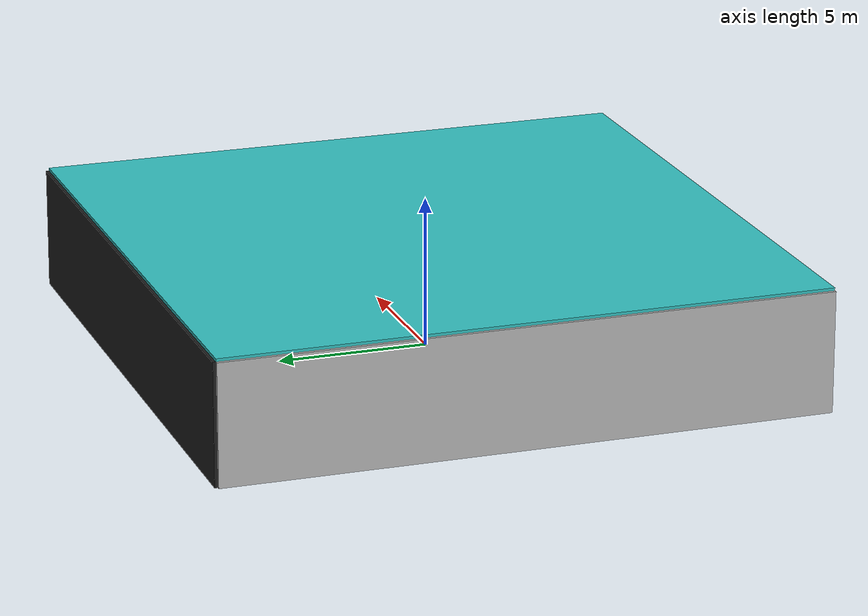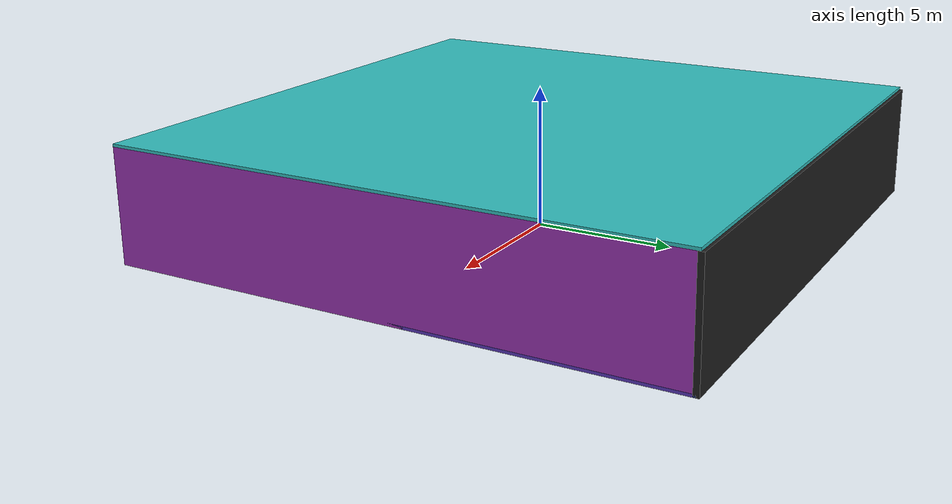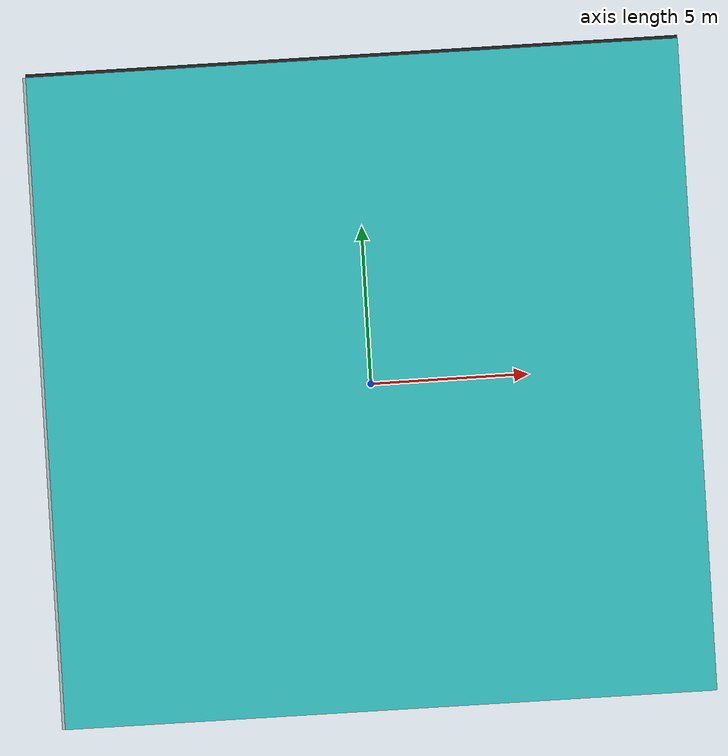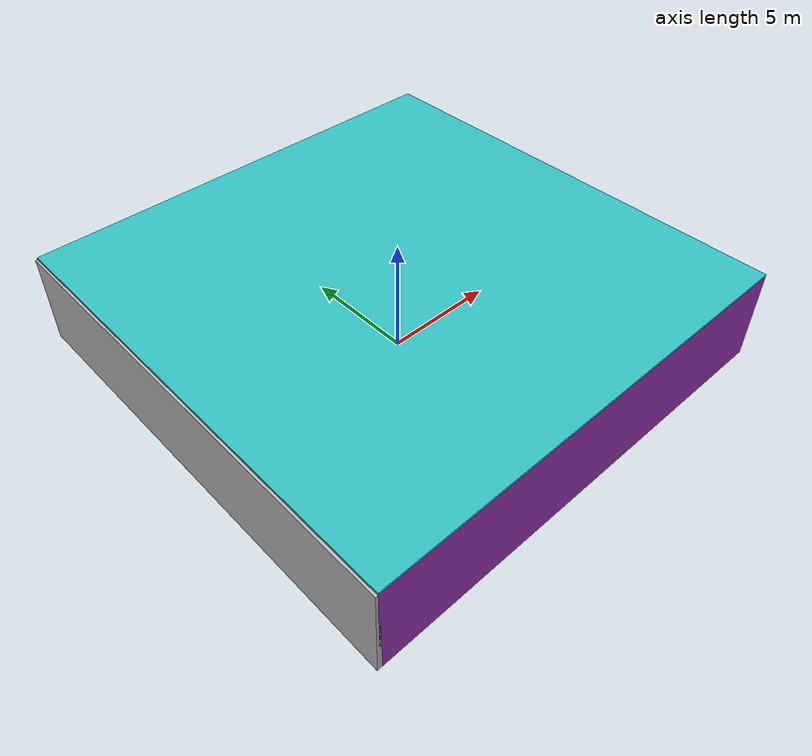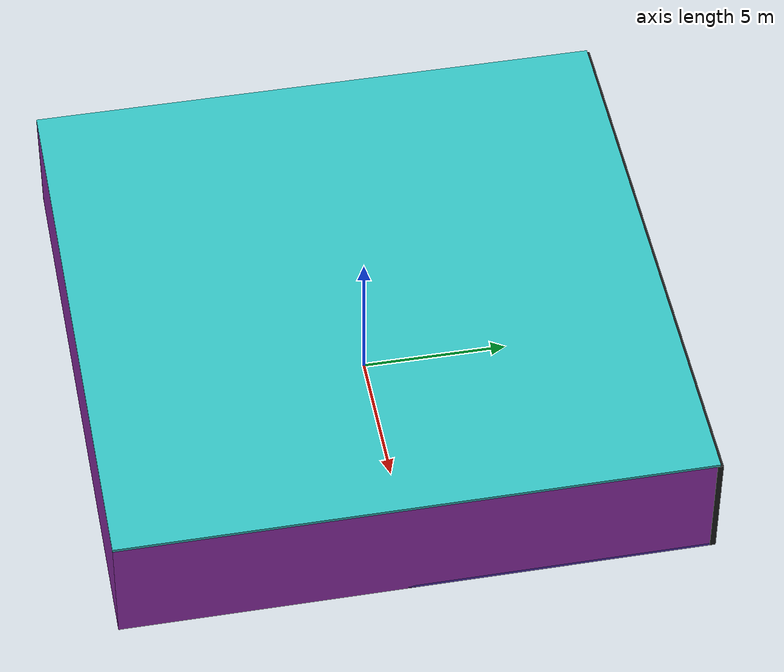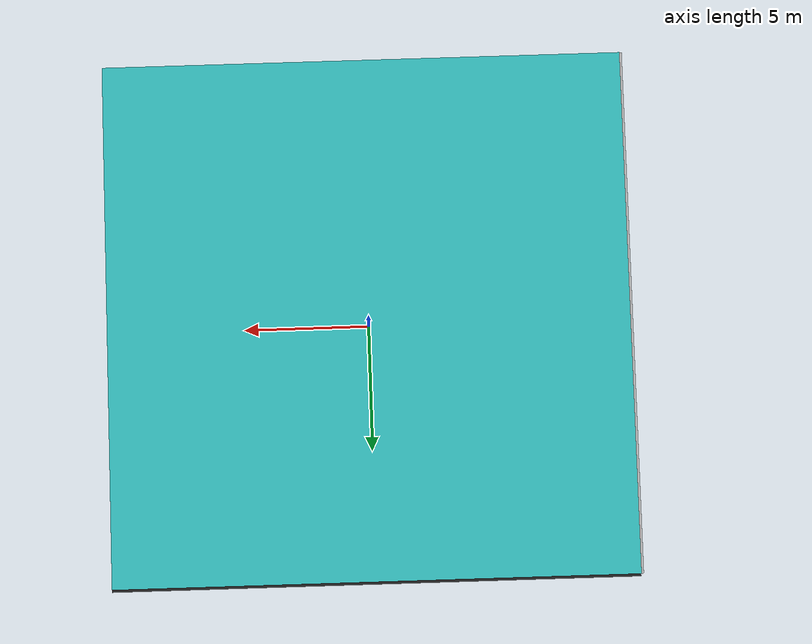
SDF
<sdf version="1.4">
 <world name="default">
  <physics type="ode">
   <max_step_size>0.001</max_step_size>
   <real_time_factor>1</real_time_factor>
   <real_time_update_rate>1000</real_time_update_rate>
   <gravity>0 0 -9.8</gravity>
  </physics>
  <scene><ambient>0.4 0.4 0.4 1</ambient><background>0.7 0.7 0.7 1</background><shadows>1</shadows></scene>
  <model name="Surrounding">
   <static>1</static>
   <link name="Ceiling">
    <collision name="Ceiling_Collision"><geometry><box><size>20 20 0.1</size></box></geometry></collision>
    <visual name="Ceiling_Visual">
     <geometry><box><size>20 20 0.1</size></box></geometry>
     <material>
      <script>
       <uri>file://media/materials/scripts/gazebo.material</uri>
       <name>Gazebo/TurquoiseGlowOutline</name>
      </script>
     </material>
    </visual>
    <pose>0 0 4.05 0 0 0</pose>
   </link>
   <link name="Wall_South">
    <collision name="Wall_South_Collision">
     <geometry><box><size>20 0 4</size></box></geometry>
     <pose>0 0 2 0 -0 0</pose>
    </collision>
    <visual name="Wall_South_Visual">
     <pose>0 0 2 0 -0 0</pose>
     <geometry><box><size>20 0 4</size></box></geometry>
     <material>
      <script><uri>file://media/materials/scripts/gazebo.material</uri><name>Gazebo/PurpleGlow</name></script>
     </material>
    </visual>
    <velocity_decay><linear>0</linear><angular>0</angular></velocity_decay>
    <pose>0 -10 0 0 -0 0</pose>
   </link>
   <link name="Wall_East">
    <collision name="Wall_21_Collision">
     <geometry><box><size>20 0 4</size></box></geometry>
     <pose>0 0 2 0 -0 0</pose>
    </collision>
    <visual name="Wall_21_Visual">
     <pose>0 0 2 0 -0 0</pose>
     <geometry><box><size>20 0 4</size></box></geometry>
     <material>
      <script><uri>file://media/materials/scripts/gazebo.material</uri><name>Gazebo/Purple</name></script>
     </material>
    </visual>
    <velocity_decay><linear>0</linear><angular>0</angular></velocity_decay>
    <pose>10 0 0 0 -0 1.5708</pose>
   </link>
   <link name="Wall_North">
    <collision name="Wall_22_Collision">
     <geometry><box><size>20 0.2 4</size></box></geometry>
     <pose>0 0 2 0 -0 0</pose>
    </collision>
    <visual name="Wall_22_Visual">
     <pose>0 0 2 0 -0 0</pose>
     <geometry><box><size>20 0.2 4</size></box></geometry>
     <material>
      <script><uri>file://media/materials/scripts/gazebo.material</uri><name>Gazebo/Black</name></script>
     </material>
    </visual>
    <velocity_decay><linear>0</linear><angular>0</angular></velocity_decay>
    <pose>0 10 0 0 -0 0</pose>
   </link>
   <link name="Wall_West">
    <collision name="Wall_23_Collision">
     <geometry><box><size>20 0.2 4</size></box></geometry>
     <pose>0 0 2 0 -0 0</pose>
    </collision>
    <visual name="Wall_23_Visual">
     <pose>0 0 2 0 -0 0</pose>
     <geometry><box><size>20 0.2 4</size></box></geometry>
     <material>
      <script><uri>file://media/materials/scripts/gazebo.material</uri><name>Gazebo/PioneerBody</name></script>
     </material>
    </visual>
    <velocity_decay><linear>0</linear><angular>0</angular></velocity_decay>
    <pose>-10 0 0 0 0 -1.5708</pose>
   </link>
   <link name="Ground_link">
    <collision name="collision">
     <pose>0 0 .05 0 -0 0</pose>
     <geometry><box><size>20 20 0.1</size></box></geometry>
    </collision>
    <visual name="visual">
     <pose>0 0 .05 0 -0 0</pose>
     <geometry><box><size>20 20 0.1</size></box></geometry>
     <material>
      <script><uri>file://media/materials/scripts/gazebo.material</uri><name>Gazebo/BlueTransparent</name></script>
     </material>
    </visual>
   </link>
   <static>1</static>
  </model>
  <spherical_coordinates>
   <surface_model>EARTH_WGS84</surface_model>
   <latitude_deg>0</latitude_deg>
   <longitude_deg>0</longitude_deg>
   <elevation>0</elevation>
   <heading_deg>0</heading_deg>
  </spherical_coordinates>
  <light name="lightball_0" type="diffuse">
   <diffuse>0.8 0.8 0.8 1</diffuse>
   <specular>0.2 0.2 0.2 1</specular>
   <attenuation>
    <range>100</range>
    <constant>0.7</constant>
    <linear>0.01</linear>
    <quadratic>0.001</quadratic>
   </attenuation>
   <direction>-0.5 0.1 -0.9</direction>
   <pose>9.09942609132 -3.06980789988 2.76027447532 0 0 0</pose>
  </light>
  <light name="lightball_1" type="diffuse">
   <diffuse>0.8 0.8 0.8 1</diffuse>
   <specular>0.2 0.2 0.2 1</specular>
   <attenuation>
    <range>100</range>
    <constant>0.7</constant>
    <linear>0.01</linear>
    <quadratic>0.001</quadratic>
   </attenuation>
   <direction>-0.5 0.1 -0.9</direction>
   <pose>4.15822196741 -5.23538955088 1.06300537938 0 0 0</pose>
  </light>
  <light name="lightball_2" type="diffuse">
   <diffuse>0.8 0.8 0.8 1</diffuse>
   <specular>0.2 0.2 0.2 1</specular>
   <attenuation>
    <range>100</range>
    <constant>0.7</constant>
    <linear>0.01</linear>
    <quadratic>0.001</quadratic>
   </attenuation>
   <direction>-0.5 0.1 -0.9</direction>
   <pose>1.17951620462 -3.9664661212 2.08975972824 0 0 0</pose>
  </light>
  <light name="lightball_3" type="diffuse">
   <diffuse>0.8 0.8 0.8 1</diffuse>
   <specular>0.2 0.2 0.2 1</specular>
   <attenuation>
    <range>100</range>
    <constant>0.7</constant>
    <linear>0.01</linear>
    <quadratic>0.001</quadratic>
   </attenuation>
   <direction>-0.5 0.1 -0.9</direction>
   <pose>9.31656481068 6.93719491595 3.0170204703 0 0 0</pose>
  </light>
  <light name="lightball_4" type="diffuse">
   <diffuse>0.8 0.8 0.8 1</diffuse>
   <specular>0.2 0.2 0.2 1</specular>
   <attenuation>
    <range>100</range>
    <constant>0.7</constant>
    <linear>0.01</linear>
    <quadratic>0.001</quadratic>
   </attenuation>
   <direction>-0.5 0.1 -0.9</direction>
   <pose>-2.4023345576 -0.811371853693 1.08223783103 0 0 0</pose>
  </light>
  <light name="lightball_5" type="diffuse">
   <diffuse>0.8 0.8 0.8 1</diffuse>
   <specular>0.2 0.2 0.2 1</specular>
   <attenuation>
    <range>100</range>
    <constant>0.7</constant>
    <linear>0.01</linear>
    <quadratic>0.001</quadratic>
   </attenuation>
   <direction>-0.5 0.1 -0.9</direction>
   <pose>-7.59963252913 -2.60415062372 2.96595079222 0 0 0</pose>
  </light>
  <light name="lightball_6" type="diffuse">
   <diffuse>0.8 0.8 0.8 1</diffuse>
   <specular>0.2 0.2 0.2 1</specular>
   <attenuation>
    <range>100</range>
    <constant>0.7</constant>
    <linear>0.01</linear>
    <quadratic>0.001</quadratic>
   </attenuation>
   <direction>-0.5 0.1 -0.9</direction>
   <pose>-6.78080312437 -6.49617667986 2.32532654941 0 0 0</pose>
  </light>
  <light name="lightball_7" type="diffuse">
   <diffuse>0.8 0.8 0.8 1</diffuse>
   <specular>0.2 0.2 0.2 1</specular>
   <attenuation>
    <range>100</range>
    <constant>0.7</constant>
    <linear>0.01</linear>
    <quadratic>0.001</quadratic>
   </attenuation>
   <direction>-0.5 0.1 -0.9</direction>
   <pose>9.20428481065 8.62965943256 3.53924352304 0 0 0</pose>
  </light>
  <light name="lightball_8" type="diffuse">
   <diffuse>0.8 0.8 0.8 1</diffuse>
   <specular>0.2 0.2 0.2 1</specular>
   <attenuation>
    <range>100</range>
    <constant>0.7</constant>
    <linear>0.01</linear>
    <quadratic>0.001</quadratic>
   </attenuation>
   <direction>-0.5 0.1 -0.9</direction>
   <pose>9.95048299654 -7.41189962982 3.89879171673 0 0 0</pose>
  </light>
  <include>
   <uri>model://textured_shapes</uri>
   <pose>-6.99545687955 7.60451135987 0 0 0 0.647979838638</pose>
  </include>
  <include><uri>model://table</uri><pose>-3.67181319748 5.14794883681 0 0 0 3.08157945086</pose></include>
  <include><uri>model://cabinet</uri><pose>-1.66792794444 8.36345443385 0 0 0 0.769768757571</pose></include>
  <include><uri>model://table</uri><pose>4.18014429953 8.26211486145 0 0 0 1.01828107758</pose></include>
 </world>
</sdf>

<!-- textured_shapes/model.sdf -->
<sdf version="1.6">
  <model name="textured_shapes">
    <pose>0 0 0.5 0 0 0</pose>
    <link name="box">
      <pose>0 -1.5 0 0 0 0</pose>
      <collision name="collision">
        <geometry>
          <box>
            <size>1 1 1</size>
          </box>
        </geometry>
      </collision>
      <visual name="visual">
        <geometry>
          <box>
            <size>1 1 1</size>
          </box>
        </geometry>
        <material>
          <script>
            <uri>model://../model_source/models/textured_shapes/materials/scripts</uri>
            <uri>model://../model_source/models/textured_shapes/materials/textures</uri>
            <name>TexturedShape/Squares</name>
          </script>
        </material>
      </visual>
    </link>
    <link name="sphere">
      <collision name="collision">
        <geometry>
          <sphere>
            <radius>0.5</radius>
          </sphere>
        </geometry>
      </collision>
      <visual name="visual">
        <geometry>
          <sphere>
            <radius>0.5</radius>
          </sphere>
        </geometry>
        <material>
          <script>
            <uri>model://../model_source/models/textured_shapes/materials/scripts</uri>
            <uri>model://../model_source/models/textured_shapes/materials/textures</uri>
            <name>TexturedShape/Squares</name>
          </script>
        </material>
      </visual>
    </link>
    <link name="cylinder">
      <pose>0 1.5 0 0 0 0</pose>
      <collision name="collision">
        <geometry>
          <cylinder>
            <radius>0.5</radius>
            <length>1</length>
          </cylinder>
        </geometry>
      </collision>
      <visual name="visual">
        <geometry>
          <cylinder>
            <radius>0.5</radius>
            <length>1</length>
          </cylinder>
        </geometry>
        <material>
          <script>
            <uri>model://../model_source/models/textured_shapes/materials/scripts</uri>
            <uri>model://../model_source/models/textured_shapes/materials/textures</uri>
            <name>TexturedShape/Squares</name>
          </script>
        </material>
      </visual>
    </link>
  </model>
</sdf>

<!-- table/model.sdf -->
<sdf version="1.5">
  <model name="table">
    <static>true</static>
    <link name="link">
      <collision name="surface">
        <pose>0 0 1.0 0 0 0</pose>
        <geometry>
          <box>
            <size>1.5 0.8 0.03</size>
          </box>
        </geometry>
        <surface>
          <friction>
            <ode>
              <mu>0.6</mu>
              <mu2>0.6</mu2>
            </ode>
          </friction>
        </surface>
      </collision>
      <visual name="visual1">
        <pose>0 0 1.0 0 0 0</pose>
        <geometry>
          <box>
            <size>1.5 0.8 0.03</size>
          </box>
        </geometry>
        <material>
          <script>
            <uri>model://media/materials/scripts/gazebo.material</uri>
            <name>Gazebo/Wood</name>
          </script>
        </material>
      </visual>
      <collision name="front_left_leg">
        <pose>0.68 0.38 0.5 0 0 0</pose>
        <geometry>
          <cylinder>
            <radius>0.02</radius>
            <length>1.0</length>
          </cylinder>
        </geometry>
      </collision>
      <visual name="front_left_leg">
        <pose>0.68 0.38 0.5 0 0 0</pose>
        <geometry>
          <cylinder>
            <radius>0.02</radius>
            <length>1.0</length>
          </cylinder>
        </geometry>
        <material>
          <script>
            <uri>model://media/materials/scripts/gazebo.material</uri>
            <name>Gazebo/Grey</name>
          </script>
        </material>
      </visual>
      <collision name="front_right_leg">
        <pose>0.68 -0.38 0.5 0 0 0</pose>
        <geometry>
          <cylinder>
            <radius>0.02</radius>
            <length>1.0</length>
          </cylinder>
        </geometry>
      </collision>
      <visual name="front_right_leg">
        <pose>0.68 -0.38 0.5 0 0 0</pose>
        <geometry>
          <cylinder>
            <radius>0.02</radius>
            <length>1.0</length>
          </cylinder>
        </geometry>
        <material>
          <script>
            <uri>model://media/materials/scripts/gazebo.material</uri>
            <name>Gazebo/Grey</name>
          </script>
        </material>
      </visual>
      <collision name="back_right_leg">
        <pose>-0.68 -0.38 0.5 0 0 0</pose>
        <geometry>
          <cylinder>
            <radius>0.02</radius>
            <length>1.0</length>
          </cylinder>
        </geometry>
      </collision>
      <visual name="back_right_leg">
        <pose>-0.68 -0.38 0.5 0 0 0</pose>
        <geometry>
          <cylinder>
            <radius>0.02</radius>
            <length>1.0</length>
          </cylinder>
        </geometry>
        <material>
          <script>
            <uri>model://media/materials/scripts/gazebo.material</uri>
            <name>Gazebo/Grey</name>
          </script>
        </material>
      </visual>
      <collision name="back_left_leg">
        <pose>-0.68 0.38 0.5 0 0 0</pose>
        <geometry>
          <cylinder>
            <radius>0.02</radius>
            <length>1.0</length>
          </cylinder>
        </geometry>
      </collision>
      <visual name="back_left_leg">
        <pose>-0.68 0.38 0.5 0 0 0</pose>
        <geometry>
          <cylinder>
            <radius>0.02</radius>
            <length>1.0</length>
          </cylinder>
        </geometry>
        <material>
          <script>
            <uri>model://media/materials/scripts/gazebo.material</uri>
            <name>Gazebo/Grey</name>
          </script>
        </material>
      </visual>
    </link>
  </model>
</sdf>

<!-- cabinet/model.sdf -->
<sdf version="1.5">
  <model name="cabinet">
    <static>true</static>
    <link name="cabinet_bottom_plate">
      <inertial>
        <pose>0 0 -1 0 0 0</pose>
        <inertia>
          <ixx>2.050000</ixx>
          <ixy>0</ixy>
          <ixz>0</ixz>
          <iyy>2.050000</iyy>
          <iyz>0</iyz>
          <izz>2.050000</izz>
        </inertia>
        <mass>25.000000</mass>
      </inertial>
      <collision name="cabinet_bottom_plate_geom">
        <pose>0 0 0.010000 0 0 0</pose>
        <geometry>
          <box>
            <size>0.450000 0.450000 0.020000</size>
          </box>
        </geometry>
      </collision>
      <visual name="cabinet_bottom_plate_geom_visual">
        <pose>0 0 0.010000 0 0 0</pose>
        <geometry>
          <box>
            <size>0.450000 0.450000 0.020000</size>
          </box>
        </geometry>
        <material>
          <script>
            <uri>model://media/materials/scripts/gazebo.material</uri>
            <name>Gazebo/Wood</name>
          </script>
        </material>
      </visual>
      <collision name="cabinet_bottom_plate_geom_cabinet_back_plate">
        <pose>0.235000 0 0.510000 0 0 0</pose>
        <geometry>
          <box>
            <size>0.020000 0.450000 1.020000</size>
          </box>
        </geometry>
      </collision>
      <visual name="cabinet_bottom_plate_geom_cabinet_back_plate_visual">
        <pose>0.235000 0 0.510000 0 0 0</pose>
        <geometry>
          <box>
            <size>0.020000 0.450000 1.020000</size>
          </box>
        </geometry>
        <material>
          <script>
            <uri>model://media/materials/scripts/gazebo.material</uri>
            <name>Gazebo/Wood</name>
          </script>
        </material>
      </visual>
      <collision name="cabinet_bottom_plate_geom_cabinet_left_plate">
        <pose>0 0.235000 0.510000 0 0 0</pose>
        <geometry>
          <box>
            <size>0.450000 0.020000 1.020000</size>
          </box>
        </geometry>
      </collision>
      <visual name="cabinet_bottom_plate_geom_cabinet_left_plate_visual">
        <pose>0 0.235000 0.510000 0 0 0</pose>
        <geometry>
          <box>
            <size>0.450000 0.020000 1.020000</size>
          </box>
        </geometry>
        <material>
          <script>
            <uri>model://media/materials/scripts/gazebo.material</uri>
            <name>Gazebo/Wood</name>
          </script>
        </material>
      </visual>
      <collision name="cabinet_bottom_plate_geom_cabinet_middle_plate">
        <pose>0 0 0.510000 0 0 0</pose>
        <geometry>
          <box>
            <size>0.450000 0.450000 0.020000</size>
          </box>
        </geometry>
      </collision>
      <visual name="cabinet_bottom_plate_geom_cabinet_middle_plate_visual">
        <pose>0 0 0.510000 0 0 0</pose>
        <geometry>
          <box>
            <size>0.450000 0.450000 0.020000</size>
          </box>
        </geometry>
        <material>
          <script>
            <uri>model://media/materials/scripts/gazebo.material</uri>
            <name>Gazebo/Wood</name>
          </script>
        </material>
      </visual>
      <collision name="cabinet_bottom_plate_geom_cabinet_right_plate">
        <pose>0 -0.235000 0.510000 0 0 0</pose>
        <geometry>
          <box>
            <size>0.450000 0.020000 1.020000</size>
          </box>
        </geometry>
      </collision>
      <visual name="cabinet_bottom_plate_geom_cabinet_right_plate_visual">
        <pose>0 -0.235000 0.510000 0 0 0</pose>
        <geometry>
          <box>
            <size>0.450000 0.020000 1.020000</size>
          </box>
        </geometry>
        <material>
          <script>
            <uri>model://media/materials/scripts/gazebo.material</uri>
            <name>Gazebo/Wood</name>
          </script>
        </material>
      </visual>
      <collision name="cabinet_bottom_plate_geom_cabinet_top_plate">
        <pose>0 0 1.010000 0 0 0</pose>
        <geometry>
          <box>
            <size>0.450000 0.450000 0.020000</size>
          </box>
        </geometry>
      </collision>
      <visual name="cabinet_bottom_plate_geom_cabinet_top_plate_visual">
        <pose>0 0 1.010000 0 0 0</pose>
        <geometry>
          <box>
            <size>0.450000 0.450000 0.020000</size>
          </box>
        </geometry>
        <material>
          <script>
            <uri>model://media/materials/scripts/gazebo.material</uri>
            <name>Gazebo/Wood</name>
          </script>
        </material>
      </visual>
    </link>
  </model>
</sdf>
